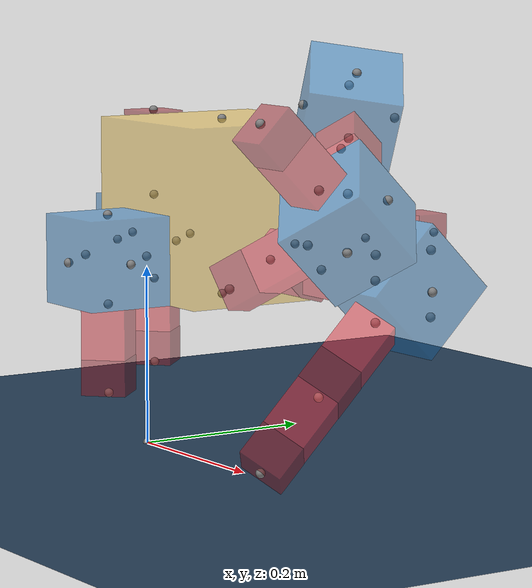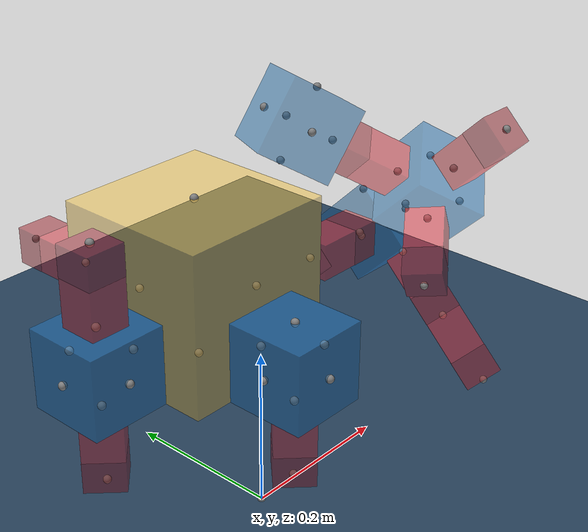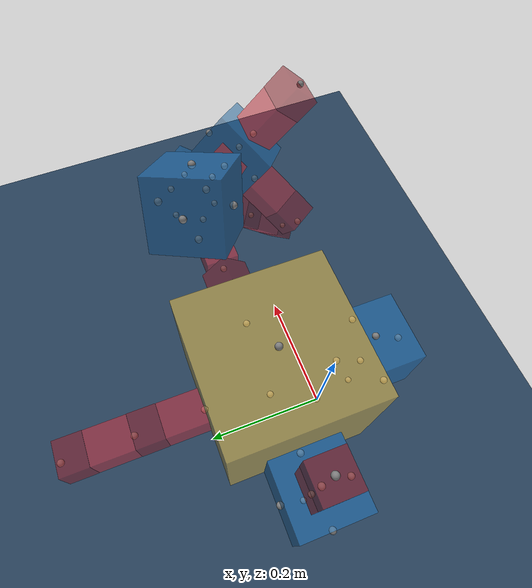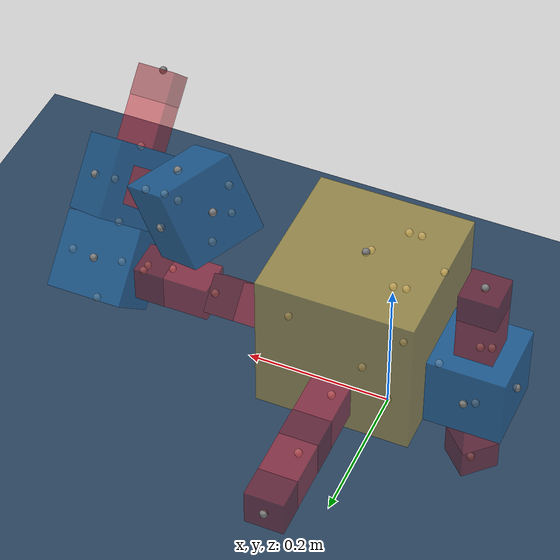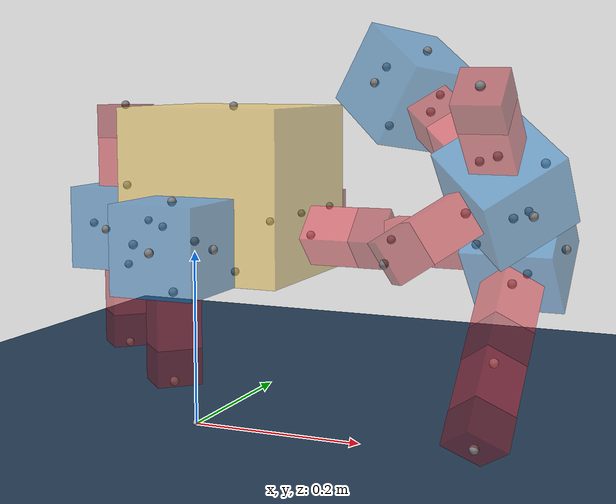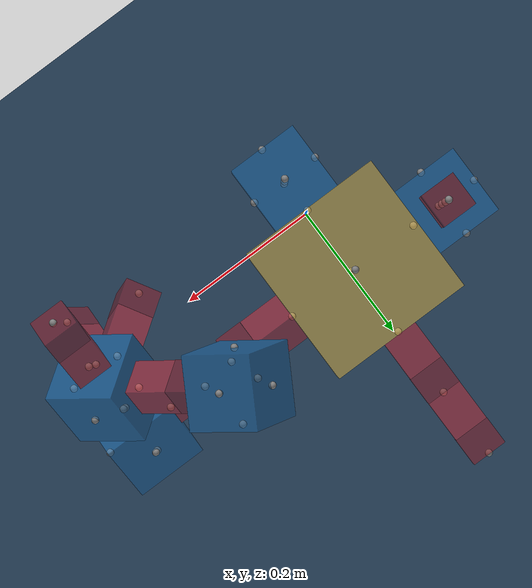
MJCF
<mujoco model="Simple Flat World">
  <compiler angle="radian"/>

  <option integrator="implicitfast"/>

  <visual>
    <global offwidth="1280" offheight="960"/>
  </visual>

  <default>
    <default class="robot1_main">
      <default class="robot1_0-25-3-main">
        <default class="robot1_0-25-3-25-5-4-main"/>
        <default class="robot1_0-25-3-25-4-5-main"/>
      </default>
      <default class="robot1_0-16-0-main"/>
      <default class="robot1_0-14-2-main"/>
      <default class="robot1_0-27-1-main"/>
      <default class="robot1_16-1-0-main"/>
      <default class="robot1_14-20-0-main"/>
      <default class="robot1_27-19-5-main"/>
      <default class="robot1_20-2-0-main"/>
      <default class="robot1_2-24-3-main"/>
      <default class="robot1_2-11-5-main"/>
      <default class="robot1_24-7-0-main"/>
      <default class="robot1_11-9-5-main"/>
      <default class="robot1_11-22-0-main"/>
      <default class="robot1_11-21-3-main"/>
      <default class="robot1_9-13-0-main"/>
    </default>
  </default>

  <asset>
    <texture type="2d" colorspace="auto" name="floor" builtin="checker" rgb1="0.1 0.2 0.3" rgb2="0.2 0.3 0.4" width="600" height="600"/>
    <material name="floor" texture="floor" texuniform="true" texrepeat="3 3"/>
  </asset>

  <worldbody>
    <site pos="0 0 0"/>
    <camera name="ortho-cam" pos="-5 0 5" quat="0.653281 0.270598 -0.270598 -0.653281" orthographic="true" fovy="5"/>
    <light name="light" pos="0 0 1" dir="0 0 -1" type="directional" castshadow="false"/>
    <body name="floor">
      <geom name="floor" size="5 5 0.5" type="plane" material="floor"/>
    </body>
    <body name="robot1_world" pos="0 0 0.261851">
      <joint type="free"/>
      <body name="robot1_core">
        <geom name="robot1_core" size="0.1 0.1 0.1" pos="0 0.1 0" type="box" mass="1" rgba="0.992157 0.792157 0.25098 0.5"/>
        <site name="robot1_core-front" pos="0 0.2 -0.05"/>
        <site name="robot1_core-back" pos="0 0 -0.05" quat="0 0 0 1"/>
        <site name="robot1_core-left" pos="-0.1 0.1 -0.05" quat="0.707107 0 0 0.707107"/>
        <site name="robot1_core-right" pos="0.1 0.1 -0.05" quat="-0.707107 0 0 0.707107"/>
        <site name="robot1_core-top" pos="0 0.1 0.1" quat="0.707107 0.707107 0 0"/>
        <site name="robot1_core-bottom" pos="0 0.1 -0.1" quat="0 0 -0.707107 0.707107"/>
        <body name="robot1_0-25-3-brick" pos="-0.1 0.1 -0.05" quat="0 -0.707107 0.707107 0">
          <geom name="robot1_0-25-3-brick" size="0.05 0.05 0.05" pos="0 0.05 0" type="box" mass="0.055" rgba="0.109804 0.466667 0.764706 0.5"/>
          <site name="robot1_0-25-3-brick-front" pos="0 0.1 0"/>
          <site name="robot1_0-25-3-brick-left" pos="-0.05 0.05 0" quat="0.707107 0 0 0.707107"/>
          <site name="robot1_0-25-3-brick-right" pos="0.05 0.05 0" quat="-0.707107 0 0 0.707107"/>
          <site name="robot1_0-25-3-brick-top" pos="0 0.05 0.05" quat="0.707107 0.707107 0 0"/>
          <site name="robot1_0-25-3-brick-bottom" pos="0 0.05 -0.05" quat="0 0 -0.707107 0.707107"/>
          <body name="robot1_0-25-3-25-5-4-hinge" pos="0 0.05 0.05" quat="-0.653215 -0.653215 0.270759 0.270759">
            <body name="robot1_0-25-3-25-5-4-stator" pos="0 0.03 0">
              <geom name="robot1_0-25-3-25-5-4-stator" size="0.02475 0.0297 0.02475" type="box" mass="0.02" rgba="0.87451 0.160784 0.207843 0.5"/>
            </body>
            <body name="robot1_0-25-3-25-5-4-rotor" pos="0 0.08 0">
              <joint name="robot1_0-25-3-25-5-4-servo" pos="0 -0.02 0" axis="0 0 1"/>
              <geom name="robot1_0-25-3-25-5-4-rotor" size="0.025 0.02 0.025" type="box" mass="0.04" rgba="0.627451 0.0941176 0.129412 0.5"/>
              <site name="robot1_0-25-3-25-5-4-hinge-front" pos="0 0.02 0"/>
            </body>
          </body>
          <body name="robot1_0-25-3-25-4-5-hinge" pos="0 0.05 -0.05" quat="0.5 -0.5 0.5 -0.5">
            <body name="robot1_0-25-3-25-4-5-stator" pos="0 0.03 0">
              <geom name="robot1_0-25-3-25-4-5-stator" size="0.02475 0.0297 0.02475" type="box" mass="0.02" rgba="0.87451 0.160784 0.207843 0.5"/>
            </body>
            <body name="robot1_0-25-3-25-4-5-rotor" pos="0 0.08 0">
              <joint name="robot1_0-25-3-25-4-5-servo" pos="0 -0.02 0" axis="0 0 1"/>
              <geom name="robot1_0-25-3-25-4-5-rotor" size="0.025 0.02 0.025" type="box" mass="0.04" rgba="0.627451 0.0941176 0.129412 0.5"/>
              <site name="robot1_0-25-3-25-4-5-hinge-front" pos="0 0.02 0"/>
            </body>
          </body>
        </body>
        <body name="robot1_0-16-0-hinge" pos="0 0.2 -0.05" quat="0 0 1 0">
          <body name="robot1_0-16-0-stator" pos="0 0.03 0">
            <geom name="robot1_0-16-0-stator" size="0.02475 0.0297 0.02475" type="box" mass="0.02" rgba="0.87451 0.160784 0.207843 0.5"/>
          </body>
          <body name="robot1_0-16-0-rotor" pos="0 0.08 0">
            <joint name="robot1_0-16-0-servo" pos="0 -0.02 0" axis="0 0 1"/>
            <geom name="robot1_0-16-0-rotor" size="0.025 0.02 0.025" type="box" mass="0.04" rgba="0.627451 0.0941176 0.129412 0.5"/>
            <site name="robot1_0-16-0-hinge-front" pos="0 0.02 0"/>
            <body name="robot1_16-1-0-hinge" pos="0 0.02 0">
              <body name="robot1_16-1-0-stator" pos="0 0.03 0">
                <geom name="robot1_16-1-0-stator" size="0.02475 0.0297 0.02475" type="box" mass="0.02" rgba="0.87451 0.160784 0.207843 0.5"/>
              </body>
              <body name="robot1_16-1-0-rotor" pos="0 0.08 0">
                <joint name="robot1_16-1-0-servo" pos="0 -0.02 0" axis="0 0 1"/>
                <geom name="robot1_16-1-0-rotor" size="0.025 0.02 0.025" type="box" mass="0.04" rgba="0.627451 0.0941176 0.129412 0.5"/>
                <site name="robot1_16-1-0-hinge-front" pos="0 0.02 0"/>
              </body>
            </body>
          </body>
        </body>
        <body name="robot1_0-14-2-hinge" pos="0.1 0.1 -0.05" quat="0.653215 -0.270759 -0.270759 -0.653215">
          <body name="robot1_0-14-2-stator" pos="0 0.03 0">
            <geom name="robot1_0-14-2-stator" size="0.02475 0.0297 0.02475" type="box" mass="0.02" rgba="0.87451 0.160784 0.207843 0.5"/>
          </body>
          <body name="robot1_0-14-2-rotor" pos="0 0.08 0">
            <joint name="robot1_0-14-2-servo" pos="0 -0.02 0" axis="0 0 1"/>
            <geom name="robot1_0-14-2-rotor" size="0.025 0.02 0.025" type="box" mass="0.04" rgba="0.627451 0.0941176 0.129412 0.5"/>
            <site name="robot1_0-14-2-hinge-front" pos="0 0.02 0"/>
            <body name="robot1_14-20-0-hinge" pos="0 0.02 0" quat="0.923785 0 0.382911 0">
              <body name="robot1_14-20-0-stator" pos="0 0.03 0">
                <geom name="robot1_14-20-0-stator" size="0.02475 0.0297 0.02475" type="box" mass="0.02" rgba="0.87451 0.160784 0.207843 0.5"/>
              </body>
              <body name="robot1_14-20-0-rotor" pos="0 0.08 0">
                <joint name="robot1_14-20-0-servo" pos="0 -0.02 0" axis="0 0 1"/>
                <geom name="robot1_14-20-0-rotor" size="0.025 0.02 0.025" type="box" mass="0.04" rgba="0.627451 0.0941176 0.129412 0.5"/>
                <site name="robot1_14-20-0-hinge-front" pos="0 0.02 0"/>
                <body name="robot1_20-2-0-brick" pos="0 0.02 0" quat="-0.382911 0 0.923785 0">
                  <geom name="robot1_20-2-0-brick" size="0.05 0.05 0.05" pos="0 0.05 0" type="box" mass="0.055" rgba="0.109804 0.466667 0.764706 0.5"/>
                  <site name="robot1_20-2-0-brick-front" pos="0 0.1 0"/>
                  <site name="robot1_20-2-0-brick-left" pos="-0.05 0.05 0" quat="0.707107 0 0 0.707107"/>
                  <site name="robot1_20-2-0-brick-right" pos="0.05 0.05 0" quat="-0.707107 0 0 0.707107"/>
                  <site name="robot1_20-2-0-brick-top" pos="0 0.05 0.05" quat="0.707107 0.707107 0 0"/>
                  <site name="robot1_20-2-0-brick-bottom" pos="0 0.05 -0.05" quat="0 0 -0.707107 0.707107"/>
                  <body name="robot1_2-24-3-hinge" pos="-0.05 0.05 0" quat="0.270759 -0.653215 0.653215 0.270759">
                    <body name="robot1_2-24-3-stator" pos="0 0.03 0">
                      <geom name="robot1_2-24-3-stator" size="0.02475 0.0297 0.02475" type="box" mass="0.02" rgba="0.87451 0.160784 0.207843 0.5"/>
                    </body>
                    <body name="robot1_2-24-3-rotor" pos="0 0.08 0">
                      <joint name="robot1_2-24-3-servo" pos="0 -0.02 0" axis="0 0 1"/>
                      <geom name="robot1_2-24-3-rotor" size="0.025 0.02 0.025" type="box" mass="0.04" rgba="0.627451 0.0941176 0.129412 0.5"/>
                      <site name="robot1_2-24-3-hinge-front" pos="0 0.02 0"/>
                      <body name="robot1_24-7-0-hinge" pos="0 0.02 0">
                        <body name="robot1_24-7-0-stator" pos="0 0.03 0">
                          <geom name="robot1_24-7-0-stator" size="0.02475 0.0297 0.02475" type="box" mass="0.02" rgba="0.87451 0.160784 0.207843 0.5"/>
                        </body>
                        <body name="robot1_24-7-0-rotor" pos="0 0.08 0">
                          <joint name="robot1_24-7-0-servo" pos="0 -0.02 0" axis="0 0 1"/>
                          <geom name="robot1_24-7-0-rotor" size="0.025 0.02 0.025" type="box" mass="0.04" rgba="0.627451 0.0941176 0.129412 0.5"/>
                          <site name="robot1_24-7-0-hinge-front" pos="0 0.02 0"/>
                        </body>
                      </body>
                    </body>
                  </body>
                  <body name="robot1_2-11-5-brick" pos="0 0.05 -0.05" quat="0.653215 -0.653215 -0.270759 0.270759">
                    <geom name="robot1_2-11-5-brick" size="0.05 0.05 0.05" pos="0 0.05 0" type="box" mass="0.055" rgba="0.109804 0.466667 0.764706 0.5"/>
                    <site name="robot1_2-11-5-brick-front" pos="0 0.1 0"/>
                    <site name="robot1_2-11-5-brick-left" pos="-0.05 0.05 0" quat="0.707107 0 0 0.707107"/>
                    <site name="robot1_2-11-5-brick-right" pos="0.05 0.05 0" quat="-0.707107 0 0 0.707107"/>
                    <site name="robot1_2-11-5-brick-top" pos="0 0.05 0.05" quat="0.707107 0.707107 0 0"/>
                    <site name="robot1_2-11-5-brick-bottom" pos="0 0.05 -0.05" quat="0 0 -0.707107 0.707107"/>
                    <body name="robot1_11-9-5-hinge" pos="0 0.05 -0.05" quat="0.5 -0.5 -0.5 0.5">
                      <body name="robot1_11-9-5-stator" pos="0 0.03 0">
                        <geom name="robot1_11-9-5-stator" size="0.02475 0.0297 0.02475" type="box" mass="0.02" rgba="0.87451 0.160784 0.207843 0.5"/>
                      </body>
                      <body name="robot1_11-9-5-rotor" pos="0 0.08 0">
                        <joint name="robot1_11-9-5-servo" pos="0 -0.02 0" axis="0 0 1"/>
                        <geom name="robot1_11-9-5-rotor" size="0.025 0.02 0.025" type="box" mass="0.04" rgba="0.627451 0.0941176 0.129412 0.5"/>
                        <site name="robot1_11-9-5-hinge-front" pos="0 0.02 0"/>
                        <body name="robot1_9-13-0-brick" pos="0 0.02 0" quat="0.382911 0 0.923785 0">
                          <geom name="robot1_9-13-0-brick" size="0.05 0.05 0.05" pos="0 0.05 0" type="box" mass="0.055" rgba="0.109804 0.466667 0.764706 0.5"/>
                          <site name="robot1_9-13-0-brick-front" pos="0 0.1 0"/>
                          <site name="robot1_9-13-0-brick-left" pos="-0.05 0.05 0" quat="0.707107 0 0 0.707107"/>
                          <site name="robot1_9-13-0-brick-right" pos="0.05 0.05 0" quat="-0.707107 0 0 0.707107"/>
                          <site name="robot1_9-13-0-brick-top" pos="0 0.05 0.05" quat="0.707107 0.707107 0 0"/>
                          <site name="robot1_9-13-0-brick-bottom" pos="0 0.05 -0.05" quat="0 0 -0.707107 0.707107"/>
                        </body>
                      </body>
                    </body>
                    <body name="robot1_11-22-0-hinge" pos="0 0.1 0" quat="0.382911 0 0.923785 0">
                      <body name="robot1_11-22-0-stator" pos="0 0.03 0">
                        <geom name="robot1_11-22-0-stator" size="0.02475 0.0297 0.02475" type="box" mass="0.02" rgba="0.87451 0.160784 0.207843 0.5"/>
                      </body>
                      <body name="robot1_11-22-0-rotor" pos="0 0.08 0">
                        <joint name="robot1_11-22-0-servo" pos="0 -0.02 0" axis="0 0 1"/>
                        <geom name="robot1_11-22-0-rotor" size="0.025 0.02 0.025" type="box" mass="0.04" rgba="0.627451 0.0941176 0.129412 0.5"/>
                        <site name="robot1_11-22-0-hinge-front" pos="0 0.02 0"/>
                      </body>
                    </body>
                    <body name="robot1_11-21-3-hinge" pos="-0.05 0.05 0" quat="-0.653215 -0.270759 0.270759 -0.653215">
                      <body name="robot1_11-21-3-stator" pos="0 0.03 0">
                        <geom name="robot1_11-21-3-stator" size="0.02475 0.0297 0.02475" type="box" mass="0.02" rgba="0.87451 0.160784 0.207843 0.5"/>
                      </body>
                      <body name="robot1_11-21-3-rotor" pos="0 0.08 0">
                        <joint name="robot1_11-21-3-servo" pos="0 -0.02 0" axis="0 0 1"/>
                        <geom name="robot1_11-21-3-rotor" size="0.025 0.02 0.025" type="box" mass="0.04" rgba="0.627451 0.0941176 0.129412 0.5"/>
                        <site name="robot1_11-21-3-hinge-front" pos="0 0.02 0"/>
                      </body>
                    </body>
                  </body>
                </body>
              </body>
            </body>
          </body>
        </body>
        <body name="robot1_0-27-1-brick" pos="0 0 -0.05" quat="0 0 0 1">
          <geom name="robot1_0-27-1-brick" size="0.05 0.05 0.05" pos="0 0.05 0" type="box" mass="0.055" rgba="0.109804 0.466667 0.764706 0.5"/>
          <site name="robot1_0-27-1-brick-front" pos="0 0.1 0"/>
          <site name="robot1_0-27-1-brick-left" pos="-0.05 0.05 0" quat="0.707107 0 0 0.707107"/>
          <site name="robot1_0-27-1-brick-right" pos="0.05 0.05 0" quat="-0.707107 0 0 0.707107"/>
          <site name="robot1_0-27-1-brick-top" pos="0 0.05 0.05" quat="0.707107 0.707107 0 0"/>
          <site name="robot1_0-27-1-brick-bottom" pos="0 0.05 -0.05" quat="0 0 -0.707107 0.707107"/>
          <body name="robot1_27-19-5-hinge" pos="0 0.05 -0.05" quat="0.270759 -0.270759 0.653215 -0.653215">
            <body name="robot1_27-19-5-stator" pos="0 0.03 0">
              <geom name="robot1_27-19-5-stator" size="0.02475 0.0297 0.02475" type="box" mass="0.02" rgba="0.87451 0.160784 0.207843 0.5"/>
            </body>
            <body name="robot1_27-19-5-rotor" pos="0 0.08 0">
              <joint name="robot1_27-19-5-servo" pos="0 -0.02 0" axis="0 0 1"/>
              <geom name="robot1_27-19-5-rotor" size="0.025 0.02 0.025" type="box" mass="0.04" rgba="0.627451 0.0941176 0.129412 0.5"/>
              <site name="robot1_27-19-5-hinge-front" pos="0 0.02 0"/>
            </body>
          </body>
        </body>
      </body>
    </body>
  </worldbody>

  <contact>
    <exclude body1="robot1_0-25-3-25-5-4-stator" body2="robot1_0-25-3-25-5-4-rotor"/>
    <exclude body1="robot1_0-25-3-25-4-5-stator" body2="robot1_0-25-3-25-4-5-rotor"/>
    <exclude body1="robot1_0-16-0-stator" body2="robot1_0-16-0-rotor"/>
    <exclude body1="robot1_16-1-0-stator" body2="robot1_16-1-0-rotor"/>
    <exclude body1="robot1_0-14-2-stator" body2="robot1_0-14-2-rotor"/>
    <exclude body1="robot1_14-20-0-stator" body2="robot1_14-20-0-rotor"/>
    <exclude body1="robot1_2-24-3-stator" body2="robot1_2-24-3-rotor"/>
    <exclude body1="robot1_24-7-0-stator" body2="robot1_24-7-0-rotor"/>
    <exclude body1="robot1_11-9-5-stator" body2="robot1_11-9-5-rotor"/>
    <exclude body1="robot1_11-22-0-stator" body2="robot1_11-22-0-rotor"/>
    <exclude body1="robot1_11-21-3-stator" body2="robot1_11-21-3-rotor"/>
    <exclude body1="robot1_27-19-5-stator" body2="robot1_27-19-5-rotor"/>
  </contact>

  <actuator>
    <general name="robot1_0-25-3-25-5-4-servo" joint="robot1_0-25-3-25-5-4-servo" ctrlrange="-1.5708 1.5708" dynprm="0 0 0 0 0 0 0 0 0 0" biastype="affine" biasprm="0 -1 -1"/>
    <general name="robot1_0-25-3-25-4-5-servo" joint="robot1_0-25-3-25-4-5-servo" ctrlrange="-1.5708 1.5708" dynprm="0 0 0 0 0 0 0 0 0 0" biastype="affine" biasprm="0 -1 -1"/>
    <general name="robot1_0-16-0-servo" joint="robot1_0-16-0-servo" ctrlrange="-1.5708 1.5708" dynprm="0 0 0 0 0 0 0 0 0 0" biastype="affine" biasprm="0 -1 -1"/>
    <general name="robot1_0-14-2-servo" joint="robot1_0-14-2-servo" ctrlrange="-1.5708 1.5708" dynprm="0 0 0 0 0 0 0 0 0 0" biastype="affine" biasprm="0 -1 -1"/>
    <general name="robot1_16-1-0-servo" joint="robot1_16-1-0-servo" ctrlrange="-1.5708 1.5708" dynprm="0 0 0 0 0 0 0 0 0 0" biastype="affine" biasprm="0 -1 -1"/>
    <general name="robot1_14-20-0-servo" joint="robot1_14-20-0-servo" ctrlrange="-1.5708 1.5708" dynprm="0 0 0 0 0 0 0 0 0 0" biastype="affine" biasprm="0 -1 -1"/>
    <general name="robot1_27-19-5-servo" joint="robot1_27-19-5-servo" ctrlrange="-1.5708 1.5708" dynprm="0 0 0 0 0 0 0 0 0 0" biastype="affine" biasprm="0 -1 -1"/>
    <general name="robot1_2-24-3-servo" joint="robot1_2-24-3-servo" ctrlrange="-1.5708 1.5708" dynprm="0 0 0 0 0 0 0 0 0 0" biastype="affine" biasprm="0 -1 -1"/>
    <general name="robot1_24-7-0-servo" joint="robot1_24-7-0-servo" ctrlrange="-1.5708 1.5708" dynprm="0 0 0 0 0 0 0 0 0 0" biastype="affine" biasprm="0 -1 -1"/>
    <general name="robot1_11-9-5-servo" joint="robot1_11-9-5-servo" ctrlrange="-1.5708 1.5708" dynprm="0 0 0 0 0 0 0 0 0 0" biastype="affine" biasprm="0 -1 -1"/>
    <general name="robot1_11-22-0-servo" joint="robot1_11-22-0-servo" ctrlrange="-1.5708 1.5708" dynprm="0 0 0 0 0 0 0 0 0 0" biastype="affine" biasprm="0 -1 -1"/>
    <general name="robot1_11-21-3-servo" joint="robot1_11-21-3-servo" ctrlrange="-1.5708 1.5708" dynprm="0 0 0 0 0 0 0 0 0 0" biastype="affine" biasprm="0 -1 -1"/>
  </actuator>
</mujoco>
